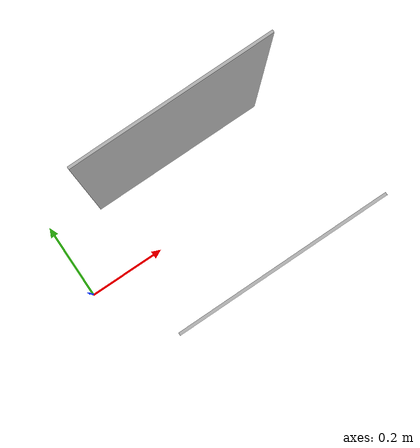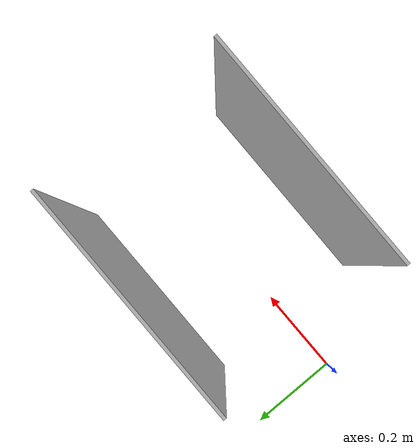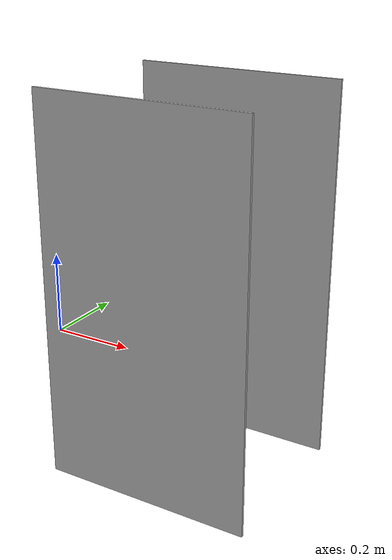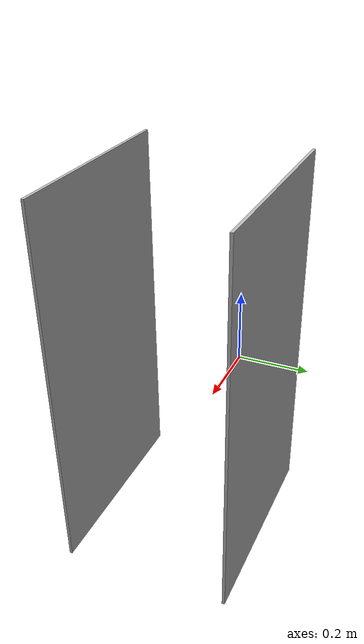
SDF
<?xml version="1.0" ?>
<sdf version="1.4">
  <world name="default">
    <include>
      <uri>model://sun</uri>
    </include>

    <model name="obs1">
      <pose>0.38 0.2 0.2 0 -0 0</pose>
      <static>1</static>
      <link name="link">
        <visual name="visual">
          <geometry>
            <box>
              <size>0.5 0.0067 0.9</size>
            </box>
          </geometry>
        </visual>
        <collision name='collision'>
          <laser_retro>0</laser_retro>
          <geometry>
            <box>
              <size>0.5 0.0067 0.9</size>
            </box>
          </geometry>
        </collision>
      </link>
    </model>

    <model name="obs2">
      <pose>0.38 -0.2 0.2 0 -0 0</pose>
      <static>1</static>
      <link name="link">
        <visual name="visual">
          <geometry>
            <box>
              <size>0.5 0.0067 0.9</size>
            </box>
          </geometry>
        </visual>
        <collision name='collision'>
          <laser_retro>0</laser_retro>
          <geometry>
            <box>
              <size>0.5 0.0067 0.9</size>
            </box>
          </geometry>
        </collision>
      </link>
    </model>
  </world>
</sdf>
